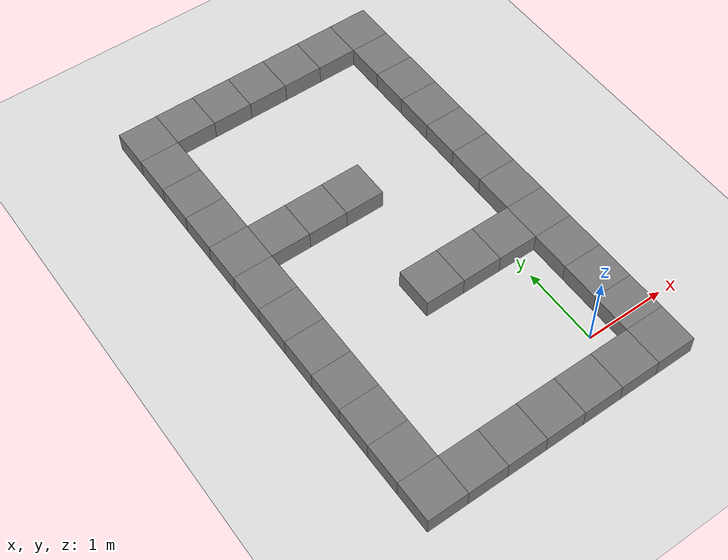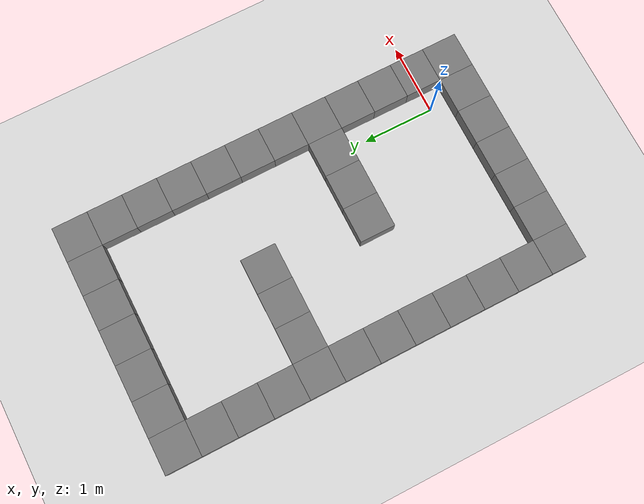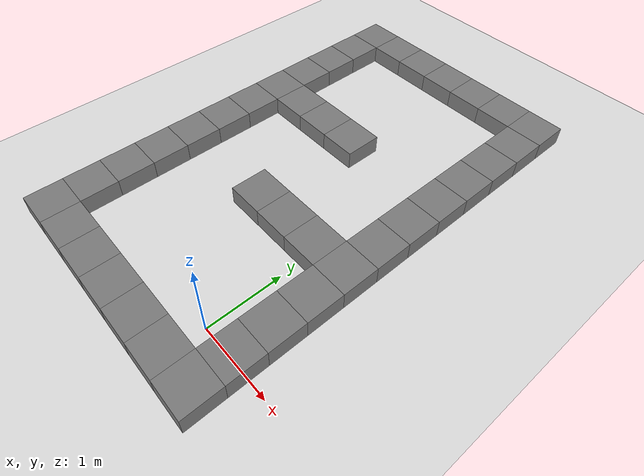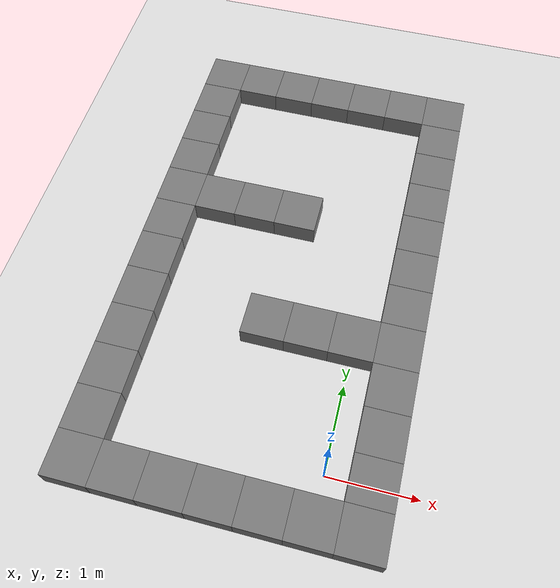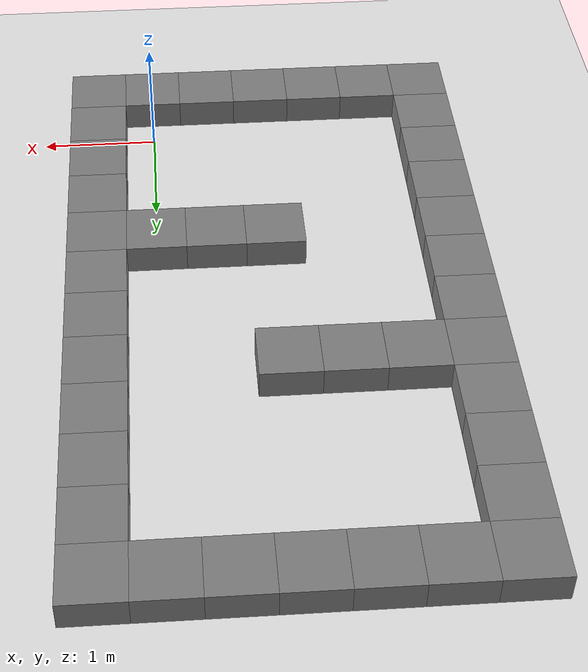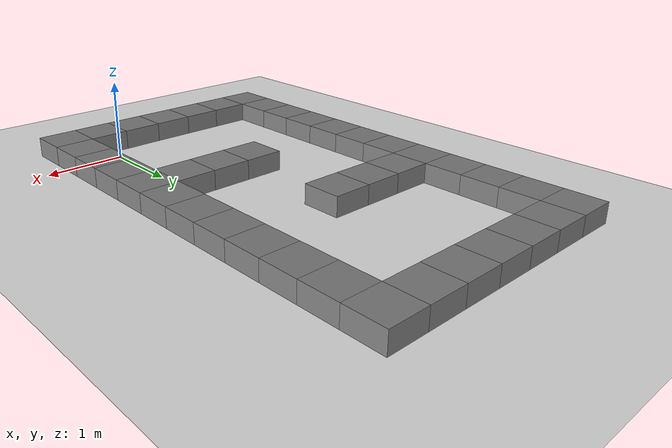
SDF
<?xml version="1.0" ?>
<sdf version="1.6">
  <world name="grid_world">
    <include>
      <uri>model://sun</uri>
    </include>
    <!-- 地面 -->
    <model name="ground_plane">
      <static>true</static>
      <link name="link">
        <collision name="collision">
          <geometry>
            <plane>
              <normal>0 0 1</normal>
              <size>20 20</size>
            </plane>
          </geometry>
        </collision>
        <visual name="visual">
          <geometry>
            <plane>
              <normal>0 0 1</normal>
              <size>20 20</size>
            </plane>
          </geometry>
          <material>
            <ambient>0.9 0.9 0.9 1</ambient>
            <diffuse>0.9 0.9 0.9 1</diffuse>
          </material>
        </visual>
      </link>
    </model>

    <model name="wall_0">
      <static>true</static>
      <pose>-2.500 5.000 0.125 0 0 0</pose>
      <link name="link">
        <visual name="visual">
          <geometry>
            <box>
              <size>0.500 0.500 0.250</size>
            </box>
          </geometry>
          <material>
            <ambient>0.4 0.4 0.4 1</ambient>
            <diffuse>0.5 0.5 0.5 1</diffuse>
          </material>
        </visual>
        <collision name="collision">
          <geometry>
            <box>
              <size>0.500 0.500 0.250</size>
            </box>
          </geometry>
        </collision>
      </link>
    </model>
    <model name="wall_1">
      <static>true</static>
      <pose>-2.000 5.000 0.125 0 0 0</pose>
      <link name="link">
        <visual name="visual">
          <geometry>
            <box>
              <size>0.500 0.500 0.250</size>
            </box>
          </geometry>
          <material>
            <ambient>0.4 0.4 0.4 1</ambient>
            <diffuse>0.5 0.5 0.5 1</diffuse>
          </material>
        </visual>
        <collision name="collision">
          <geometry>
            <box>
              <size>0.500 0.500 0.250</size>
            </box>
          </geometry>
        </collision>
      </link>
    </model>
    <model name="wall_2">
      <static>true</static>
      <pose>-1.500 5.000 0.125 0 0 0</pose>
      <link name="link">
        <visual name="visual">
          <geometry>
            <box>
              <size>0.500 0.500 0.250</size>
            </box>
          </geometry>
          <material>
            <ambient>0.4 0.4 0.4 1</ambient>
            <diffuse>0.5 0.5 0.5 1</diffuse>
          </material>
        </visual>
        <collision name="collision">
          <geometry>
            <box>
              <size>0.500 0.500 0.250</size>
            </box>
          </geometry>
        </collision>
      </link>
    </model>
    <model name="wall_3">
      <static>true</static>
      <pose>-1.000 5.000 0.125 0 0 0</pose>
      <link name="link">
        <visual name="visual">
          <geometry>
            <box>
              <size>0.500 0.500 0.250</size>
            </box>
          </geometry>
          <material>
            <ambient>0.4 0.4 0.4 1</ambient>
            <diffuse>0.5 0.5 0.5 1</diffuse>
          </material>
        </visual>
        <collision name="collision">
          <geometry>
            <box>
              <size>0.500 0.500 0.250</size>
            </box>
          </geometry>
        </collision>
      </link>
    </model>
    <model name="wall_4">
      <static>true</static>
      <pose>-0.500 5.000 0.125 0 0 0</pose>
      <link name="link">
        <visual name="visual">
          <geometry>
            <box>
              <size>0.500 0.500 0.250</size>
            </box>
          </geometry>
          <material>
            <ambient>0.4 0.4 0.4 1</ambient>
            <diffuse>0.5 0.5 0.5 1</diffuse>
          </material>
        </visual>
        <collision name="collision">
          <geometry>
            <box>
              <size>0.500 0.500 0.250</size>
            </box>
          </geometry>
        </collision>
      </link>
    </model>
    <model name="wall_5">
      <static>true</static>
      <pose>0.000 5.000 0.125 0 0 0</pose>
      <link name="link">
        <visual name="visual">
          <geometry>
            <box>
              <size>0.500 0.500 0.250</size>
            </box>
          </geometry>
          <material>
            <ambient>0.4 0.4 0.4 1</ambient>
            <diffuse>0.5 0.5 0.5 1</diffuse>
          </material>
        </visual>
        <collision name="collision">
          <geometry>
            <box>
              <size>0.500 0.500 0.250</size>
            </box>
          </geometry>
        </collision>
      </link>
    </model>
    <model name="wall_6">
      <static>true</static>
      <pose>0.500 5.000 0.125 0 0 0</pose>
      <link name="link">
        <visual name="visual">
          <geometry>
            <box>
              <size>0.500 0.500 0.250</size>
            </box>
          </geometry>
          <material>
            <ambient>0.4 0.4 0.4 1</ambient>
            <diffuse>0.5 0.5 0.5 1</diffuse>
          </material>
        </visual>
        <collision name="collision">
          <geometry>
            <box>
              <size>0.500 0.500 0.250</size>
            </box>
          </geometry>
        </collision>
      </link>
    </model>
    <model name="wall_7">
      <static>true</static>
      <pose>-2.500 4.500 0.125 0 0 0</pose>
      <link name="link">
        <visual name="visual">
          <geometry>
            <box>
              <size>0.500 0.500 0.250</size>
            </box>
          </geometry>
          <material>
            <ambient>0.4 0.4 0.4 1</ambient>
            <diffuse>0.5 0.5 0.5 1</diffuse>
          </material>
        </visual>
        <collision name="collision">
          <geometry>
            <box>
              <size>0.500 0.500 0.250</size>
            </box>
          </geometry>
        </collision>
      </link>
    </model>
    <model name="wall_8">
      <static>true</static>
      <pose>0.500 4.500 0.125 0 0 0</pose>
      <link name="link">
        <visual name="visual">
          <geometry>
            <box>
              <size>0.500 0.500 0.250</size>
            </box>
          </geometry>
          <material>
            <ambient>0.4 0.4 0.4 1</ambient>
            <diffuse>0.5 0.5 0.5 1</diffuse>
          </material>
        </visual>
        <collision name="collision">
          <geometry>
            <box>
              <size>0.500 0.500 0.250</size>
            </box>
          </geometry>
        </collision>
      </link>
    </model>
    <model name="wall_9">
      <static>true</static>
      <pose>-2.500 4.000 0.125 0 0 0</pose>
      <link name="link">
        <visual name="visual">
          <geometry>
            <box>
              <size>0.500 0.500 0.250</size>
            </box>
          </geometry>
          <material>
            <ambient>0.4 0.4 0.4 1</ambient>
            <diffuse>0.5 0.5 0.5 1</diffuse>
          </material>
        </visual>
        <collision name="collision">
          <geometry>
            <box>
              <size>0.500 0.500 0.250</size>
            </box>
          </geometry>
        </collision>
      </link>
    </model>
    <model name="wall_10">
      <static>true</static>
      <pose>0.500 4.000 0.125 0 0 0</pose>
      <link name="link">
        <visual name="visual">
          <geometry>
            <box>
              <size>0.500 0.500 0.250</size>
            </box>
          </geometry>
          <material>
            <ambient>0.4 0.4 0.4 1</ambient>
            <diffuse>0.5 0.5 0.5 1</diffuse>
          </material>
        </visual>
        <collision name="collision">
          <geometry>
            <box>
              <size>0.500 0.500 0.250</size>
            </box>
          </geometry>
        </collision>
      </link>
    </model>
    <model name="wall_11">
      <static>true</static>
      <pose>-2.500 3.500 0.125 0 0 0</pose>
      <link name="link">
        <visual name="visual">
          <geometry>
            <box>
              <size>0.500 0.500 0.250</size>
            </box>
          </geometry>
          <material>
            <ambient>0.4 0.4 0.4 1</ambient>
            <diffuse>0.5 0.5 0.5 1</diffuse>
          </material>
        </visual>
        <collision name="collision">
          <geometry>
            <box>
              <size>0.500 0.500 0.250</size>
            </box>
          </geometry>
        </collision>
      </link>
    </model>
    <model name="wall_12">
      <static>true</static>
      <pose>0.500 3.500 0.125 0 0 0</pose>
      <link name="link">
        <visual name="visual">
          <geometry>
            <box>
              <size>0.500 0.500 0.250</size>
            </box>
          </geometry>
          <material>
            <ambient>0.4 0.4 0.4 1</ambient>
            <diffuse>0.5 0.5 0.5 1</diffuse>
          </material>
        </visual>
        <collision name="collision">
          <geometry>
            <box>
              <size>0.500 0.500 0.250</size>
            </box>
          </geometry>
        </collision>
      </link>
    </model>
    <model name="wall_13">
      <static>true</static>
      <pose>-2.500 3.000 0.125 0 0 0</pose>
      <link name="link">
        <visual name="visual">
          <geometry>
            <box>
              <size>0.500 0.500 0.250</size>
            </box>
          </geometry>
          <material>
            <ambient>0.4 0.4 0.4 1</ambient>
            <diffuse>0.5 0.5 0.5 1</diffuse>
          </material>
        </visual>
        <collision name="collision">
          <geometry>
            <box>
              <size>0.500 0.500 0.250</size>
            </box>
          </geometry>
        </collision>
      </link>
    </model>
    <model name="wall_14">
      <static>true</static>
      <pose>-2.000 3.000 0.125 0 0 0</pose>
      <link name="link">
        <visual name="visual">
          <geometry>
            <box>
              <size>0.500 0.500 0.250</size>
            </box>
          </geometry>
          <material>
            <ambient>0.4 0.4 0.4 1</ambient>
            <diffuse>0.5 0.5 0.5 1</diffuse>
          </material>
        </visual>
        <collision name="collision">
          <geometry>
            <box>
              <size>0.500 0.500 0.250</size>
            </box>
          </geometry>
        </collision>
      </link>
    </model>
    <model name="wall_15">
      <static>true</static>
      <pose>-1.500 3.000 0.125 0 0 0</pose>
      <link name="link">
        <visual name="visual">
          <geometry>
            <box>
              <size>0.500 0.500 0.250</size>
            </box>
          </geometry>
          <material>
            <ambient>0.4 0.4 0.4 1</ambient>
            <diffuse>0.5 0.5 0.5 1</diffuse>
          </material>
        </visual>
        <collision name="collision">
          <geometry>
            <box>
              <size>0.500 0.500 0.250</size>
            </box>
          </geometry>
        </collision>
      </link>
    </model>
    <model name="wall_16">
      <static>true</static>
      <pose>-1.000 3.000 0.125 0 0 0</pose>
      <link name="link">
        <visual name="visual">
          <geometry>
            <box>
              <size>0.500 0.500 0.250</size>
            </box>
          </geometry>
          <material>
            <ambient>0.4 0.4 0.4 1</ambient>
            <diffuse>0.5 0.5 0.5 1</diffuse>
          </material>
        </visual>
        <collision name="collision">
          <geometry>
            <box>
              <size>0.500 0.500 0.250</size>
            </box>
          </geometry>
        </collision>
      </link>
    </model>
    <model name="wall_17">
      <static>true</static>
      <pose>0.500 3.000 0.125 0 0 0</pose>
      <link name="link">
        <visual name="visual">
          <geometry>
            <box>
              <size>0.500 0.500 0.250</size>
            </box>
          </geometry>
          <material>
            <ambient>0.4 0.4 0.4 1</ambient>
            <diffuse>0.5 0.5 0.5 1</diffuse>
          </material>
        </visual>
        <collision name="collision">
          <geometry>
            <box>
              <size>0.500 0.500 0.250</size>
            </box>
          </geometry>
        </collision>
      </link>
    </model>
    <model name="wall_18">
      <static>true</static>
      <pose>-2.500 2.500 0.125 0 0 0</pose>
      <link name="link">
        <visual name="visual">
          <geometry>
            <box>
              <size>0.500 0.500 0.250</size>
            </box>
          </geometry>
          <material>
            <ambient>0.4 0.4 0.4 1</ambient>
            <diffuse>0.5 0.5 0.5 1</diffuse>
          </material>
        </visual>
        <collision name="collision">
          <geometry>
            <box>
              <size>0.500 0.500 0.250</size>
            </box>
          </geometry>
        </collision>
      </link>
    </model>
    <model name="wall_19">
      <static>true</static>
      <pose>0.500 2.500 0.125 0 0 0</pose>
      <link name="link">
        <visual name="visual">
          <geometry>
            <box>
              <size>0.500 0.500 0.250</size>
            </box>
          </geometry>
          <material>
            <ambient>0.4 0.4 0.4 1</ambient>
            <diffuse>0.5 0.5 0.5 1</diffuse>
          </material>
        </visual>
        <collision name="collision">
          <geometry>
            <box>
              <size>0.500 0.500 0.250</size>
            </box>
          </geometry>
        </collision>
      </link>
    </model>
    <model name="wall_20">
      <static>true</static>
      <pose>-2.500 2.000 0.125 0 0 0</pose>
      <link name="link">
        <visual name="visual">
          <geometry>
            <box>
              <size>0.500 0.500 0.250</size>
            </box>
          </geometry>
          <material>
            <ambient>0.4 0.4 0.4 1</ambient>
            <diffuse>0.5 0.5 0.5 1</diffuse>
          </material>
        </visual>
        <collision name="collision">
          <geometry>
            <box>
              <size>0.500 0.500 0.250</size>
            </box>
          </geometry>
        </collision>
      </link>
    </model>
    <model name="wall_21">
      <static>true</static>
      <pose>0.500 2.000 0.125 0 0 0</pose>
      <link name="link">
        <visual name="visual">
          <geometry>
            <box>
              <size>0.500 0.500 0.250</size>
            </box>
          </geometry>
          <material>
            <ambient>0.4 0.4 0.4 1</ambient>
            <diffuse>0.5 0.5 0.5 1</diffuse>
          </material>
        </visual>
        <collision name="collision">
          <geometry>
            <box>
              <size>0.500 0.500 0.250</size>
            </box>
          </geometry>
        </collision>
      </link>
    </model>
    <model name="wall_22">
      <static>true</static>
      <pose>-2.500 1.500 0.125 0 0 0</pose>
      <link name="link">
        <visual name="visual">
          <geometry>
            <box>
              <size>0.500 0.500 0.250</size>
            </box>
          </geometry>
          <material>
            <ambient>0.4 0.4 0.4 1</ambient>
            <diffuse>0.5 0.5 0.5 1</diffuse>
          </material>
        </visual>
        <collision name="collision">
          <geometry>
            <box>
              <size>0.500 0.500 0.250</size>
            </box>
          </geometry>
        </collision>
      </link>
    </model>
    <model name="wall_23">
      <static>true</static>
      <pose>-1.000 1.500 0.125 0 0 0</pose>
      <link name="link">
        <visual name="visual">
          <geometry>
            <box>
              <size>0.500 0.500 0.250</size>
            </box>
          </geometry>
          <material>
            <ambient>0.4 0.4 0.4 1</ambient>
            <diffuse>0.5 0.5 0.5 1</diffuse>
          </material>
        </visual>
        <collision name="collision">
          <geometry>
            <box>
              <size>0.500 0.500 0.250</size>
            </box>
          </geometry>
        </collision>
      </link>
    </model>
    <model name="wall_24">
      <static>true</static>
      <pose>-0.500 1.500 0.125 0 0 0</pose>
      <link name="link">
        <visual name="visual">
          <geometry>
            <box>
              <size>0.500 0.500 0.250</size>
            </box>
          </geometry>
          <material>
            <ambient>0.4 0.4 0.4 1</ambient>
            <diffuse>0.5 0.5 0.5 1</diffuse>
          </material>
        </visual>
        <collision name="collision">
          <geometry>
            <box>
              <size>0.500 0.500 0.250</size>
            </box>
          </geometry>
        </collision>
      </link>
    </model>
    <model name="wall_25">
      <static>true</static>
      <pose>0.000 1.500 0.125 0 0 0</pose>
      <link name="link">
        <visual name="visual">
          <geometry>
            <box>
              <size>0.500 0.500 0.250</size>
            </box>
          </geometry>
          <material>
            <ambient>0.4 0.4 0.4 1</ambient>
            <diffuse>0.5 0.5 0.5 1</diffuse>
          </material>
        </visual>
        <collision name="collision">
          <geometry>
            <box>
              <size>0.500 0.500 0.250</size>
            </box>
          </geometry>
        </collision>
      </link>
    </model>
    <model name="wall_26">
      <static>true</static>
      <pose>0.500 1.500 0.125 0 0 0</pose>
      <link name="link">
        <visual name="visual">
          <geometry>
            <box>
              <size>0.500 0.500 0.250</size>
            </box>
          </geometry>
          <material>
            <ambient>0.4 0.4 0.4 1</ambient>
            <diffuse>0.5 0.5 0.5 1</diffuse>
          </material>
        </visual>
        <collision name="collision">
          <geometry>
            <box>
              <size>0.500 0.500 0.250</size>
            </box>
          </geometry>
        </collision>
      </link>
    </model>
    <model name="wall_27">
      <static>true</static>
      <pose>-2.500 1.000 0.125 0 0 0</pose>
      <link name="link">
        <visual name="visual">
          <geometry>
            <box>
              <size>0.500 0.500 0.250</size>
            </box>
          </geometry>
          <material>
            <ambient>0.4 0.4 0.4 1</ambient>
            <diffuse>0.5 0.5 0.5 1</diffuse>
          </material>
        </visual>
        <collision name="collision">
          <geometry>
            <box>
              <size>0.500 0.500 0.250</size>
            </box>
          </geometry>
        </collision>
      </link>
    </model>
    <model name="wall_28">
      <static>true</static>
      <pose>0.500 1.000 0.125 0 0 0</pose>
      <link name="link">
        <visual name="visual">
          <geometry>
            <box>
              <size>0.500 0.500 0.250</size>
            </box>
          </geometry>
          <material>
            <ambient>0.4 0.4 0.4 1</ambient>
            <diffuse>0.5 0.5 0.5 1</diffuse>
          </material>
        </visual>
        <collision name="collision">
          <geometry>
            <box>
              <size>0.500 0.500 0.250</size>
            </box>
          </geometry>
        </collision>
      </link>
    </model>
    <model name="wall_29">
      <static>true</static>
      <pose>-2.500 0.500 0.125 0 0 0</pose>
      <link name="link">
        <visual name="visual">
          <geometry>
            <box>
              <size>0.500 0.500 0.250</size>
            </box>
          </geometry>
          <material>
            <ambient>0.4 0.4 0.4 1</ambient>
            <diffuse>0.5 0.5 0.5 1</diffuse>
          </material>
        </visual>
        <collision name="collision">
          <geometry>
            <box>
              <size>0.500 0.500 0.250</size>
            </box>
          </geometry>
        </collision>
      </link>
    </model>
    <model name="wall_30">
      <static>true</static>
      <pose>0.500 0.500 0.125 0 0 0</pose>
      <link name="link">
        <visual name="visual">
          <geometry>
            <box>
              <size>0.500 0.500 0.250</size>
            </box>
          </geometry>
          <material>
            <ambient>0.4 0.4 0.4 1</ambient>
            <diffuse>0.5 0.5 0.5 1</diffuse>
          </material>
        </visual>
        <collision name="collision">
          <geometry>
            <box>
              <size>0.500 0.500 0.250</size>
            </box>
          </geometry>
        </collision>
      </link>
    </model>
    <model name="wall_31">
      <static>true</static>
      <pose>-2.500 0.000 0.125 0 0 0</pose>
      <link name="link">
        <visual name="visual">
          <geometry>
            <box>
              <size>0.500 0.500 0.250</size>
            </box>
          </geometry>
          <material>
            <ambient>0.4 0.4 0.4 1</ambient>
            <diffuse>0.5 0.5 0.5 1</diffuse>
          </material>
        </visual>
        <collision name="collision">
          <geometry>
            <box>
              <size>0.500 0.500 0.250</size>
            </box>
          </geometry>
        </collision>
      </link>
    </model>
    <model name="wall_32">
      <static>true</static>
      <pose>0.500 0.000 0.125 0 0 0</pose>
      <link name="link">
        <visual name="visual">
          <geometry>
            <box>
              <size>0.500 0.500 0.250</size>
            </box>
          </geometry>
          <material>
            <ambient>0.4 0.4 0.4 1</ambient>
            <diffuse>0.5 0.5 0.5 1</diffuse>
          </material>
        </visual>
        <collision name="collision">
          <geometry>
            <box>
              <size>0.500 0.500 0.250</size>
            </box>
          </geometry>
        </collision>
      </link>
    </model>
    <model name="wall_33">
      <static>true</static>
      <pose>-2.500 -0.500 0.125 0 0 0</pose>
      <link name="link">
        <visual name="visual">
          <geometry>
            <box>
              <size>0.500 0.500 0.250</size>
            </box>
          </geometry>
          <material>
            <ambient>0.4 0.4 0.4 1</ambient>
            <diffuse>0.5 0.5 0.5 1</diffuse>
          </material>
        </visual>
        <collision name="collision">
          <geometry>
            <box>
              <size>0.500 0.500 0.250</size>
            </box>
          </geometry>
        </collision>
      </link>
    </model>
    <model name="wall_34">
      <static>true</static>
      <pose>-2.000 -0.500 0.125 0 0 0</pose>
      <link name="link">
        <visual name="visual">
          <geometry>
            <box>
              <size>0.500 0.500 0.250</size>
            </box>
          </geometry>
          <material>
            <ambient>0.4 0.4 0.4 1</ambient>
            <diffuse>0.5 0.5 0.5 1</diffuse>
          </material>
        </visual>
        <collision name="collision">
          <geometry>
            <box>
              <size>0.500 0.500 0.250</size>
            </box>
          </geometry>
        </collision>
      </link>
    </model>
    <model name="wall_35">
      <static>true</static>
      <pose>-1.500 -0.500 0.125 0 0 0</pose>
      <link name="link">
        <visual name="visual">
          <geometry>
            <box>
              <size>0.500 0.500 0.250</size>
            </box>
          </geometry>
          <material>
            <ambient>0.4 0.4 0.4 1</ambient>
            <diffuse>0.5 0.5 0.5 1</diffuse>
          </material>
        </visual>
        <collision name="collision">
          <geometry>
            <box>
              <size>0.500 0.500 0.250</size>
            </box>
          </geometry>
        </collision>
      </link>
    </model>
    <model name="wall_36">
      <static>true</static>
      <pose>-1.000 -0.500 0.125 0 0 0</pose>
      <link name="link">
        <visual name="visual">
          <geometry>
            <box>
              <size>0.500 0.500 0.250</size>
            </box>
          </geometry>
          <material>
            <ambient>0.4 0.4 0.4 1</ambient>
            <diffuse>0.5 0.5 0.5 1</diffuse>
          </material>
        </visual>
        <collision name="collision">
          <geometry>
            <box>
              <size>0.500 0.500 0.250</size>
            </box>
          </geometry>
        </collision>
      </link>
    </model>
    <model name="wall_37">
      <static>true</static>
      <pose>-0.500 -0.500 0.125 0 0 0</pose>
      <link name="link">
        <visual name="visual">
          <geometry>
            <box>
              <size>0.500 0.500 0.250</size>
            </box>
          </geometry>
          <material>
            <ambient>0.4 0.4 0.4 1</ambient>
            <diffuse>0.5 0.5 0.5 1</diffuse>
          </material>
        </visual>
        <collision name="collision">
          <geometry>
            <box>
              <size>0.500 0.500 0.250</size>
            </box>
          </geometry>
        </collision>
      </link>
    </model>
    <model name="wall_38">
      <static>true</static>
      <pose>0.000 -0.500 0.125 0 0 0</pose>
      <link name="link">
        <visual name="visual">
          <geometry>
            <box>
              <size>0.500 0.500 0.250</size>
            </box>
          </geometry>
          <material>
            <ambient>0.4 0.4 0.4 1</ambient>
            <diffuse>0.5 0.5 0.5 1</diffuse>
          </material>
        </visual>
        <collision name="collision">
          <geometry>
            <box>
              <size>0.500 0.500 0.250</size>
            </box>
          </geometry>
        </collision>
      </link>
    </model>
    <model name="wall_39">
      <static>true</static>
      <pose>0.500 -0.500 0.125 0 0 0</pose>
      <link name="link">
        <visual name="visual">
          <geometry>
            <box>
              <size>0.500 0.500 0.250</size>
            </box>
          </geometry>
          <material>
            <ambient>0.4 0.4 0.4 1</ambient>
            <diffuse>0.5 0.5 0.5 1</diffuse>
          </material>
        </visual>
        <collision name="collision">
          <geometry>
            <box>
              <size>0.500 0.500 0.250</size>
            </box>
          </geometry>
        </collision>
      </link>
    </model>
  </world>
</sdf>
